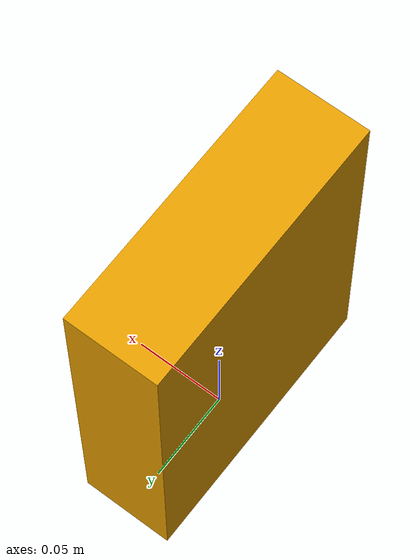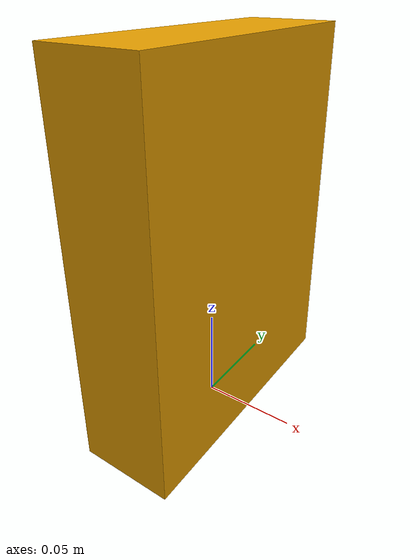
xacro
<?xml version="1.0"?>
<robot xmlns:xacro="http://www.ros.org/wiki/xacro">

   <material name="white">
       <color rgba="1 1 1 1" />
   </material>

   <material name="orange">
       <color rgba="1 0.3 0.1 1" />
   </material>

   <material name="blue">
       <color rgba="0.2 0.2 1 1" />
   </material>

   <material name="red">
       <color rgba="1 0.2 0.2 1" />
   </material>

   <material name="black">
       <color rgba="0.2 0.2 0.2 1" />
   </material>

   <xacro:property name="radius_finger" value="0.3"/>
   <xacro:property name="arm_lenght" value="0.3"/>
   <xacro:property name="link_distance" value="0.3"/>
   <xacro:property name="palm_height" value="0.2"/>

   <link name="wrist_link">
      <visual>
         <origin xyz="0 0 ${palm_height/2}" />
            <geometry>
              <box size="0.05 0.15 ${palm_height}" />
            </geometry>
        </visual>
   </link>

</robot>
